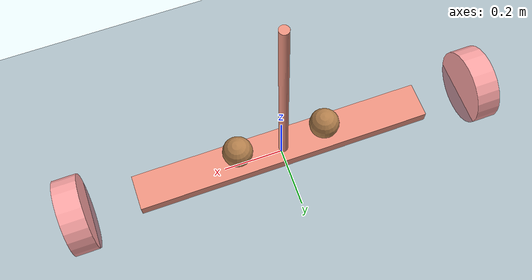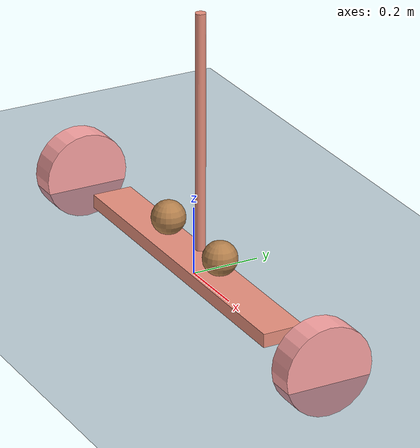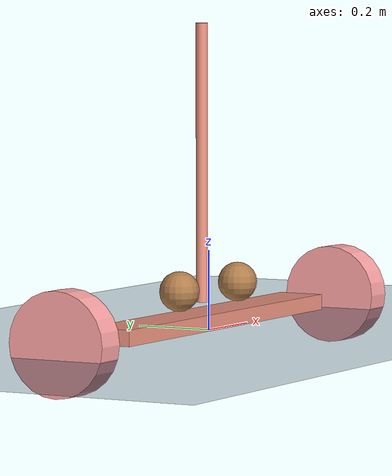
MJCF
<mujoco model="scooter scene">
  <compiler angle="radian"/>
  <option timestep="0.000025"/>

  <include file="balance.xml"/>

  <statistic center="0 0 0.3" extent="0.3"/>
  <visual>
    <headlight diffuse="0.6 0.6 0.6" ambient="0.3 0.3 0.3" specular="0 0 0"/>
    <rgba haze="0.15 0.25 0.35 1"/>
    <global azimuth="120" elevation="-15" fovy="50"/>
  </visual>

  <asset>
    <!-- 天空盒：golf scene 的灰色渐变 -->
    <texture type="skybox" builtin="gradient" rgb1="0.8 0.8 0.8" rgb2="0 0 0" width="512" height="3072"/>
    <!-- 地面纹理：golf scene 的深色棋盘格 -->
    <texture type="2d" name="groundplane" builtin="checker" mark="edge"
             rgb1="0.2 0.3 0.4" rgb2="0.1 0.2 0.3" markrgb="0.8 0.8 0.8"
             width="300" height="300"/>
    <material name="groundplane" texture="groundplane" texuniform="true" texrepeat="5 5" reflectance="0.2"/>
  </asset>

  <worldbody>
    <light pos="0 0 1.5" dir="0 0 -1" directional="true"/>
    <!-- 地面几何体 -->
    <geom name="ground" size="0 0 0.05" type="plane" friction="1.0 1.0 0.1"
          pos="0 0 0" material="groundplane" contype="1" conaffinity="2"/>
  </worldbody>
</mujoco>

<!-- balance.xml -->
<mujoco model="balance">
    <compiler angle="radian"/>
    <size njmax="500" nconmax="100"/>

    <asset>
        <texture type="2d" name="wheel_texture" builtin="checker" mark="edge"
                 rgb1="1 1 1" rgb2="1 0.3 0.3"
                 markrgb="0.3 0.3 0.3" width="1024" height="1024"/>
        <material name="wheel_material" texture="wheel_texture" texuniform="true" texrepeat="20 20"/>
        <texture type="2d" name="body_texture" builtin="gradient" rgb1="0.9 0.3 0.5"
                 rgb2="0.95 0.85 0.5" width="512" height="512"/>
        <material name="body_material" texture="body_texture" texrepeat="4 2" shininess="0.3"/>
        <material name="foot_material" rgba="0.7 0.5 0.3 1" shininess="0.4"/>
    </asset>

    <option gravity="0 0 -9.81" viscosity="0.002"/>

    <worldbody>
        <body name="robot_body">
            <joint name="robot_body_joint" type="free"/>

            <!-- 踏板（人的站立平台） -->
            <body name="board" pos="0 0 0.03">
                <geom type="box" size="0.5 0.06 0.02" material="body_material"/>
                <inertial pos="0.0 0.0 0.0" quat="0.707107 0 0 0.707107"
                          mass="1.2" diaginertia="0.003 0.003 0.001"/>

                <!-- 左脚球 -->
                <body name="left_foot" pos="-0.15 0 0.08">
                    <geom type="sphere" size="0.05" material="foot_material"/>
                    <inertial pos="0 0 0" mass="4.0" diaginertia="0.004 0.004 0.004"/>
                </body>

                <!-- 右脚球 -->
                <body name="right_foot" pos="0.15 0 0.08">
                    <geom type="sphere" size="0.05" material="foot_material"/>
                    <inertial pos="0 0 0" mass="4.0" diaginertia="0.004 0.004 0.004"/>
                </body>
            </body>

            <!-- 倒立杆（球包） -->
            <body name="pendulum" pos="0 0.02 0.07">
                <geom type="cylinder" size="0.015 0.35" pos="0 0 0.35" material="body_material"/>
                <inertial pos="0.0 0.0 0.0" quat="0.707107 0 0 0.707107"
                          mass="0.6" diaginertia="0.004 0.004 0.0015"/>
            </body>

            <!-- 左轮 -->
            <body name="l_wheel" pos="-0.7 0 0.034">
                <inertial pos="0 0 0" quat="0.5 0.5 -0.5 0.5" mass="0.3"
                          diaginertia="0.0004 0.0002 0.0002"/>
                <joint name="torso_l_wheel" type="hinge" pos="0 0 0" axis="-1 0 0" damping="0.2"/>
                <geom type="cylinder" size="0.1275 0.04" quat="0.707107 0 0.707107 0"
                      material="wheel_material" contype="2" conaffinity="1"/>
                <geom type="cylinder" size="0.1275 0.04" quat="0.707107 0 0.707107 0"
                      material="wheel_material"/>
            </body>

            <!-- 右轮 -->
            <body name="r_wheel" pos="0.7 0 0.034">
                <inertial pos="0 0 0" quat="0.5 0.5 -0.5 0.5" mass="0.3"
                          diaginertia="0.0004 0.0002 0.0002"/>
                <joint name="torso_r_wheel" type="hinge" pos="0 0 0" axis="1 0 0" damping="0.2"/>
                <geom type="cylinder" size="0.1275 0.04" quat="0.707107 0 0.707107 0"
                      material="wheel_material" contype="2" conaffinity="1"/>
                <geom type="cylinder" size="0.1275 0.04" quat="0.707107 0 0.707107 0"
                      material="wheel_material"/>
            </body>
        </body>
    </worldbody>

    <actuator>
        <motor name="motor_l_wheel" joint="torso_l_wheel" gear="1" ctrlrange="-100 100" ctrllimited="true"/>
        <motor name="motor_r_wheel" joint="torso_r_wheel" gear="1" ctrlrange="-100 100" ctrllimited="true"/>
    </actuator>
</mujoco>
